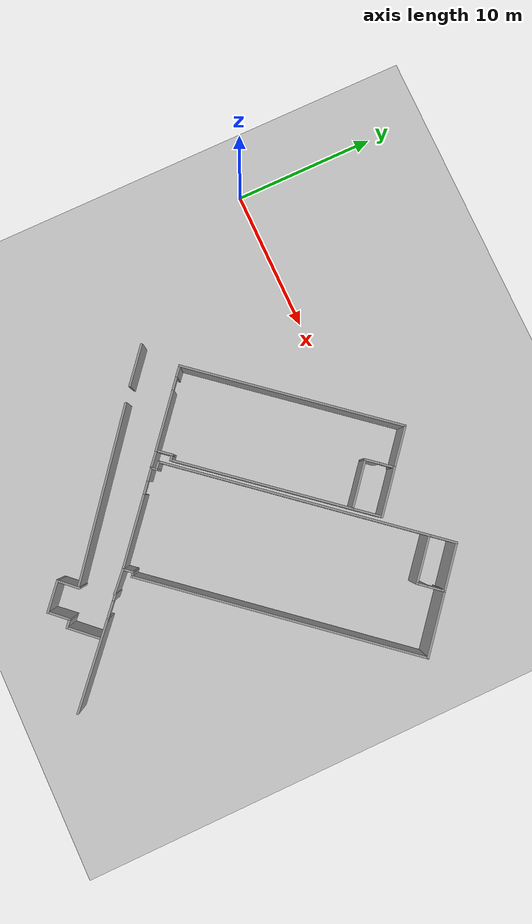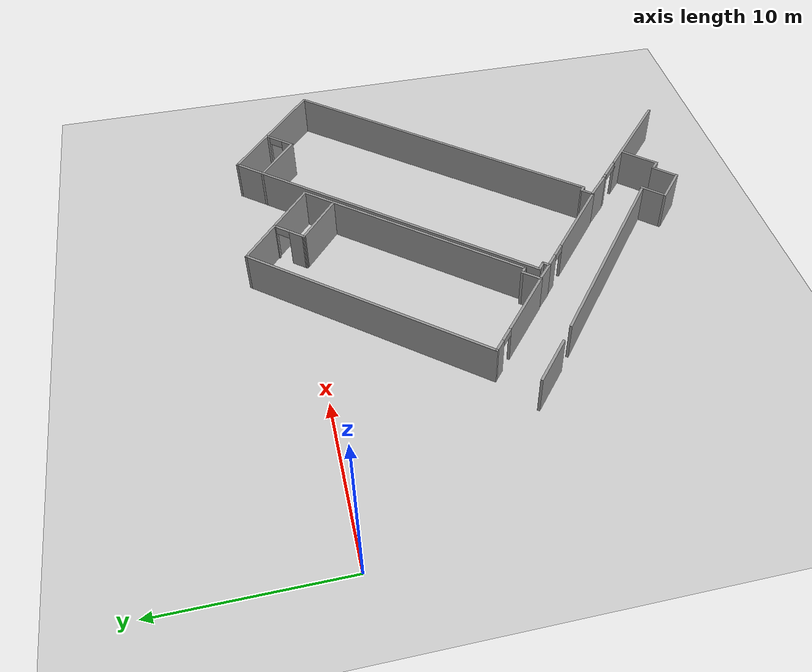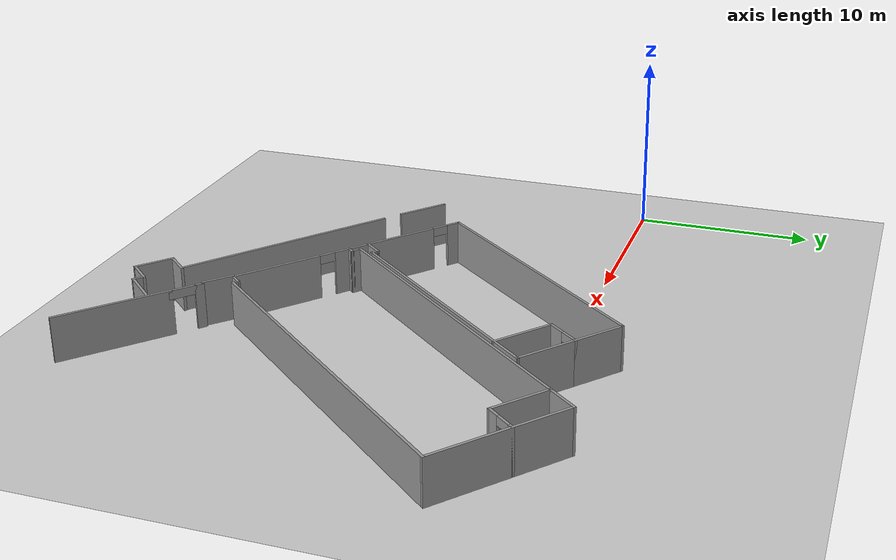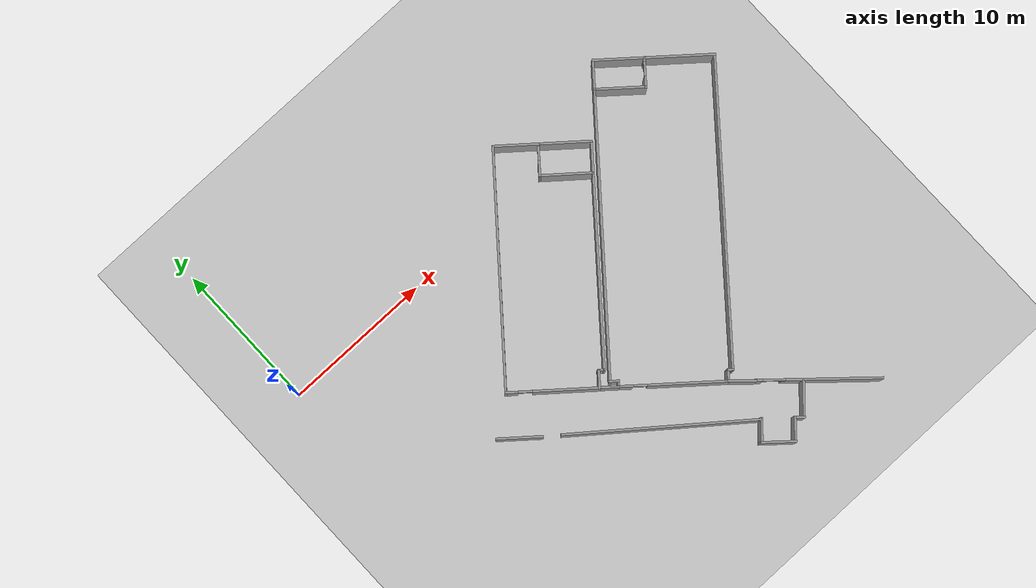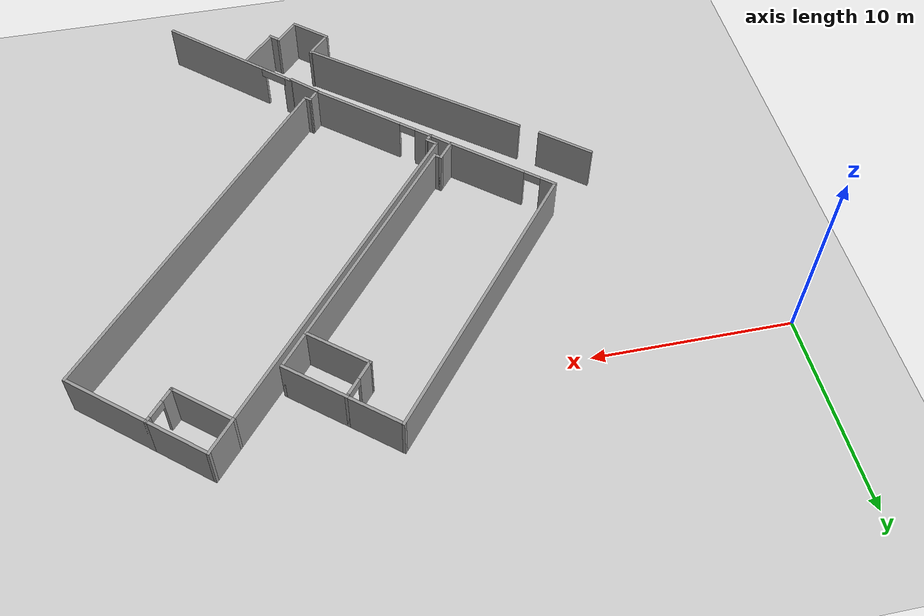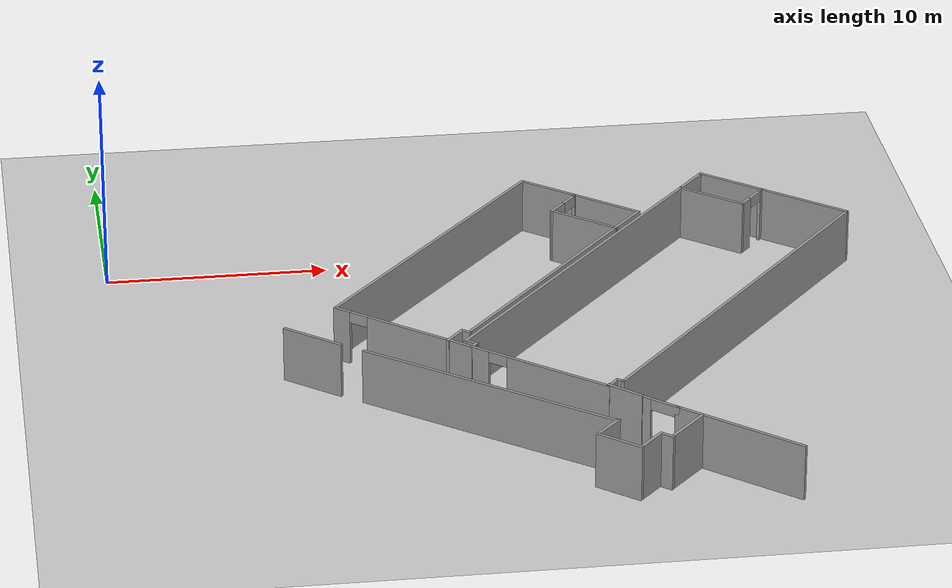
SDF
<sdf version="1.6">
 <world name="default">
  <model name="ground_plane">
   <static>1</static>
   <link name="link">
    <collision name="collision">
     <geometry><plane><normal>0 0 1</normal><size>100 100</size></plane></geometry>
     <surface>
      <contact><collide_bitmask>65535</collide_bitmask></contact>
      <friction><ode><mu>100</mu><mu2>50</mu2></ode></friction>
     </surface>
    </collision>
    <visual name="visual">
     <cast_shadows>0</cast_shadows>
     <geometry><plane><normal>0 0 1</normal><size>100 100</size></plane></geometry>
     <material>
      <script><uri>file://media/materials/scripts/gazebo.material</uri><name>Gazebo/Grey</name></script>
     </material>
    </visual>
   </link>
  </model>
  <model name="1802">
   <pose>24.1192 -7.53078 0 0 -0 2.44606</pose>
   <link name="Wall_100">
    <collision name="Wall_100_Collision">
     <geometry><box><size>3.3883 0.15 2.5</size></box></geometry>
     <pose>0 0 1.25 0 -0 0</pose>
    </collision>
    <visual name="Wall_100_Visual">
     <pose>0 0 1.25 0 -0 0</pose>
     <geometry><box><size>3.3883 0.15 2.5</size></box></geometry>
     <material>
      <script><uri>file://media/materials/scripts/gazebo.material</uri><name>Gazebo/Grey</name></script>
      <ambient>1 1 1 1</ambient>
     </material>
     <meta><layer>0</layer></meta>
    </visual>
    <pose>2.21705 -8.45439 0 0 -0 3.14159</pose>
   </link>
   <link name="Wall_101">
    <pose>0.598047 -9.40484 0 0 -0 -1.57085</pose>
    <visual name="Wall_101_Visual_0">
     <pose>-0.610406 0 1.25 0 -0 0</pose>
     <geometry><box><size>0.728286 0.15 2.5</size></box></geometry>
     <material>
      <script><uri>file://media/materials/scripts/gazebo.material</uri><name>Gazebo/Grey</name></script>
      <ambient>1 1 1 1</ambient>
     </material>
     <meta><layer>0</layer></meta>
    </visual>
    <collision name="Wall_101_Collision_0">
     <geometry><box><size>0.728286 0.15 2.5</size></box></geometry>
     <pose>-0.610406 0 1.25 0 -0 0</pose>
    </collision>
    <visual name="Wall_101_Visual_1">
     <pose>0.814143 0 1.25 0 -0 0</pose>
     <geometry><box><size>0.320812 0.15 2.5</size></box></geometry>
     <material>
      <script><uri>file://media/materials/scripts/gazebo.material</uri><name>Gazebo/Grey</name></script>
      <ambient>1 1 1 1</ambient>
     </material>
     <meta><layer>0</layer></meta>
    </visual>
    <collision name="Wall_101_Collision_1">
     <geometry><box><size>0.320812 0.15 2.5</size></box></geometry>
     <pose>0.814143 0 1.25 0 -0 0</pose>
    </collision>
    <visual name="Wall_101_Visual_2">
     <pose>0.203737 0 2.25 0 -0 0</pose>
     <geometry><box><size>0.9 0.15 0.5</size></box></geometry>
     <material>
      <script><uri>file://media/materials/scripts/gazebo.material</uri><name>Gazebo/Grey</name></script>
      <ambient>1 1 1 1</ambient>
     </material>
     <meta><layer>0</layer></meta>
    </visual>
    <collision name="Wall_101_Collision_2">
     <geometry><box><size>0.9 0.15 0.5</size></box></geometry>
     <pose>0.203737 0 2.25 0 -0 0</pose>
    </collision>
   </link>
   <link name="Wall_102">
    <collision name="Wall_102_Collision">
     <geometry><box><size>4.58439 0.15 2.5</size></box></geometry>
     <pose>0 0 1.25 0 -0 0</pose>
    </collision>
    <visual name="Wall_102_Visual">
     <pose>0 0 1.25 0 -0 0</pose>
     <geometry><box><size>4.58439 0.15 2.5</size></box></geometry>
     <material>
      <script><uri>file://media/materials/scripts/gazebo.material</uri><name>Gazebo/Grey</name></script>
      <ambient>1 1 1 1</ambient>
     </material>
     <meta><layer>0</layer></meta>
    </visual>
    <pose>-1.619 -10.3044 0 0 -0 3.14159</pose>
   </link>
   <link name="Wall_103">
    <collision name="Wall_103_Collision">
     <geometry><box><size>20.059 0.15 2.5</size></box></geometry>
     <pose>0 0 1.25 0 -0 0</pose>
    </collision>
    <visual name="Wall_103_Visual">
     <pose>0 0 1.25 0 -0 0</pose>
     <geometry><box><size>20.059 0.15 2.5</size></box></geometry>
     <material>
      <script><uri>file://media/materials/scripts/gazebo.material</uri><name>Gazebo/Grey</name></script>
      <ambient>1 1 1 1</ambient>
     </material>
     <meta><layer>0</layer></meta>
    </visual>
    <pose>-3.836 -0.349889 0 0 -0 1.5708</pose>
   </link>
   <link name="Wall_104">
    <collision name="Wall_104_Collision">
     <geometry><box><size>0.445 0.15 2.5</size></box></geometry>
     <pose>0 0 1.25 0 -0 0</pose>
    </collision>
    <visual name="Wall_104_Visual">
     <pose>0 0 1.25 0 -0 0</pose>
     <geometry><box><size>0.445 0.15 2.5</size></box></geometry>
     <material>
      <script><uri>file://media/materials/scripts/gazebo.material</uri><name>Gazebo/Grey</name></script>
      <ambient>1 1 1 1</ambient>
     </material>
     <meta><layer>0</layer></meta>
    </visual>
    <pose>-3.6885 9.60461 0 0 -0 0</pose>
   </link>
   <link name="Wall_106">
    <collision name="Wall_106_Collision">
     <geometry><box><size>0.849769 0.15 2.5</size></box></geometry>
     <pose>0 0 1.25 0 -0 0</pose>
    </collision>
    <visual name="Wall_106_Visual">
     <pose>0 0 1.25 0 -0 0</pose>
     <geometry><box><size>0.849769 0.15 2.5</size></box></geometry>
     <material>
      <script><uri>file://media/materials/scripts/gazebo.material</uri><name>Gazebo/Grey</name></script>
      <ambient>1 1 1 1</ambient>
     </material>
     <meta><layer>0</layer></meta>
    </visual>
    <pose>-3.54093 9.95449 0 0 -0 1.57059</pose>
   </link>
   <link name="Wall_114">
    <collision name="Wall_114_Collision">
     <geometry><box><size>2 0.15 2.5</size></box></geometry>
     <pose>0 0 1.25 0 -0 0</pose>
    </collision>
    <visual name="Wall_114_Visual">
     <pose>0 0 1.25 0 -0 0</pose>
     <geometry><box><size>2 0.15 2.5</size></box></geometry>
     <material>
      <script><uri>file://media/materials/scripts/gazebo.material</uri><name>Gazebo/Grey</name></script>
      <ambient>1 1 1 1</ambient>
     </material>
     <meta><layer>0</layer></meta>
    </visual>
    <pose>3.836 -9.37929 0 0 -0 -1.5708</pose>
   </link>
   <link name="Wall_116">
    <collision name="Wall_116_Collision">
     <geometry><box><size>3.3883 0.15 2.5</size></box></geometry>
     <pose>0 0 1.25 0 -0 0</pose>
    </collision>
    <visual name="Wall_116_Visual">
     <pose>0 0 1.25 0 -0 0</pose>
     <geometry><box><size>3.3883 0.15 2.5</size></box></geometry>
     <material>
      <script><uri>file://media/materials/scripts/gazebo.material</uri><name>Gazebo/Grey</name></script>
      <ambient>1 1 1 1</ambient>
     </material>
     <meta><layer>0</layer></meta>
    </visual>
    <pose>2.217 -10.3043 0 0 -0 -3.14153</pose>
   </link>
   <link name="Wall_93">
    <pose>-0.115858 10.3044 0 0 -0 0</pose>
    <visual name="Wall_93_Visual_0">
     <pose>-0.934826 0 1.25 0 -0 0</pose>
     <geometry><box><size>5.13035 0.15 2.5</size></box></geometry>
     <material>
      <script><uri>file://media/materials/scripts/gazebo.material</uri><name>Gazebo/Grey</name></script>
      <ambient>1 1 1 1</ambient>
     </material>
     <meta><layer>0</layer></meta>
    </visual>
    <collision name="Wall_93_Collision_0">
     <geometry><box><size>5.13035 0.15 2.5</size></box></geometry>
     <pose>-0.934826 0 1.25 0 -0 0</pose>
    </collision>
    <visual name="Wall_93_Visual_1">
     <pose>3.01517 0 1.25 0 -0 0</pose>
     <geometry><box><size>0.969653 0.15 2.5</size></box></geometry>
     <material>
      <script><uri>file://media/materials/scripts/gazebo.material</uri><name>Gazebo/Grey</name></script>
      <ambient>1 1 1 1</ambient>
     </material>
     <meta><layer>0</layer></meta>
    </visual>
    <collision name="Wall_93_Collision_1">
     <geometry><box><size>0.969653 0.15 2.5</size></box></geometry>
     <pose>3.01517 0 1.25 0 -0 0</pose>
    </collision>
    <visual name="Wall_93_Visual_2">
     <pose>2.08035 0 2.25 0 -0 0</pose>
     <geometry><box><size>0.9 0.15 0.5</size></box></geometry>
     <material>
      <script><uri>file://media/materials/scripts/gazebo.material</uri><name>Gazebo/Grey</name></script>
      <ambient>1 1 1 1</ambient>
     </material>
     <meta><layer>0</layer></meta>
    </visual>
    <collision name="Wall_93_Collision_2">
     <geometry><box><size>0.9 0.15 0.5</size></box></geometry>
     <pose>2.08035 0 2.25 0 -0 0</pose>
    </collision>
   </link>
   <link name="Wall_94">
    <collision name="Wall_94_Collision">
     <geometry><box><size>0.5 0.15 2.5</size></box></geometry>
     <pose>0 0 1.25 0 -0 0</pose>
    </collision>
    <visual name="Wall_94_Visual">
     <pose>0 0 1.25 0 -0 0</pose>
     <geometry><box><size>0.5 0.15 2.5</size></box></geometry>
     <material>
      <script><uri>file://media/materials/scripts/gazebo.material</uri><name>Gazebo/Grey</name></script>
      <ambient>1 1 1 1</ambient>
     </material>
     <meta><layer>0</layer></meta>
    </visual>
    <pose>3.30914 10.1294 0 0 -0 -1.5708</pose>
   </link>
   <link name="Wall_95">
    <collision name="Wall_95_Collision">
     <geometry><box><size>0.676857 0.15 2.5</size></box></geometry>
     <pose>0 0 1.25 0 -0 0</pose>
    </collision>
    <visual name="Wall_95_Visual">
     <pose>0 0 1.25 0 -0 0</pose>
     <geometry><box><size>0.676857 0.15 2.5</size></box></geometry>
     <material>
      <script><uri>file://media/materials/scripts/gazebo.material</uri><name>Gazebo/Grey</name></script>
      <ambient>1 1 1 1</ambient>
     </material>
     <meta><layer>0</layer></meta>
    </visual>
    <pose>3.57257 9.95449 0 0 -0 0.000439</pose>
   </link>
   <link name="Wall_99">
    <collision name="Wall_99_Collision">
     <geometry><box><size>18.5597 0.15 2.5</size></box></geometry>
     <pose>0 0 1.25 0 -0 0</pose>
    </collision>
    <visual name="Wall_99_Visual">
     <pose>0 0 1.25 0 -0 0</pose>
     <geometry><box><size>18.5597 0.15 2.5</size></box></geometry>
     <material>
      <script><uri>file://media/materials/scripts/gazebo.material</uri><name>Gazebo/Grey</name></script>
      <ambient>1 1 1 1</ambient>
     </material>
     <meta><layer>0</layer></meta>
    </visual>
    <pose>3.836 0.750111 0 0 -0 -1.5708</pose>
   </link>
   <static>1</static>
  </model>
  <model name="wall(1.8)">
   <link name="Wall_106">
    <inertial>
     <mass>1</mass>
     <inertia><ixx>1</ixx><ixy>0</ixy><ixz>0</ixz><iyy>1</iyy><iyz>0</iyz><izz>1</izz></inertia>
    </inertial>
    <visual name="Wall_106_Visual">
     <pose>0 0 1.25 0 -0 0</pose>
     <geometry><box><size>1.8 0.15 2.5</size></box></geometry>
     <material>
      <script><uri>file://media/materials/scripts/gazebo.material</uri><name>Gazebo/Grey</name></script>
      <ambient>1 1 1 1</ambient>
      <shader type="vertex"><normal_map>__default__</normal_map></shader>
      <diffuse>0.7 0.7 0.7 1</diffuse>
      <specular>0.01 0.01 0.01 1</specular>
      <emissive>0 0 0 1</emissive>
     </material>
     <meta><layer>0</layer></meta>
    </visual>
    <collision name="Wall_106_Collision">
     <pose>0 0 1.25 0 -0 0</pose>
     <geometry><box><size>6.75 0.15 2.5</size></box></geometry>
     <surface>
      <friction>
       <ode><mu>1</mu><mu2>1</mu2><fdir1>0 0 0</fdir1><slip1>0</slip1><slip2>0</slip2></ode>
       <torsional>
        <coefficient>1</coefficient>
        <patch_radius>0</patch_radius>
        <surface_radius>0</surface_radius>
        <use_patch_radius>1</use_patch_radius>
        <ode><slip>0</slip></ode>
       </torsional>
      </friction>
      <bounce><restitution_coefficient>0</restitution_coefficient><threshold>1e+06</threshold></bounce>
      <contact>
       <collide_without_contact>0</collide_without_contact>
       <collide_without_contact_bitmask>1</collide_without_contact_bitmask>
       <collide_bitmask>1</collide_bitmask>
       <ode>
        <soft_cfm>0</soft_cfm>
        <soft_erp>0.2</soft_erp>
        <kp>1e+13</kp>
        <kd>1</kd>
        <max_vel>0.01</max_vel>
        <min_depth>0</min_depth>
       </ode>
       <bullet>
        <split_impulse>1</split_impulse>
        <split_impulse_penetration_threshold>-0.01</split_impulse_penetration_threshold>
        <soft_cfm>0</soft_cfm>
        <soft_erp>0.2</soft_erp>
        <kp>1e+13</kp>
        <kd>1</kd>
       </bullet>
      </contact>
     </surface>
    </collision>
   </link>
   <static>1</static>
   <pose>20.8488 -18.268 0.050769 0 0 -0.749802</pose>
  </model>
  <model name="door_1801_1">
   <link name="Wall_121">
    <inertial>
     <mass>1</mass>
     <inertia><ixx>1</ixx><ixy>0</ixy><ixz>0</ixz><iyy>1</iyy><iyz>0</iyz><izz>1</izz></inertia>
    </inertial>
    <visual name="Wall_121_Visual_2">
     <pose>-2.7 0 2.25 0 -0 0</pose>
     <geometry><box><size>1.5 0.15 0.5</size></box></geometry>
     <material>
      <script><uri>file://media/materials/scripts/gazebo.material</uri><name>Gazebo/Grey</name></script>
      <ambient>1 1 1 1</ambient>
      <shader type="vertex"><normal_map>__default__</normal_map></shader>
      <diffuse>0.7 0.7 0.7 1</diffuse>
      <specular>0.01 0.01 0.01 1</specular>
      <emissive>0 0 0 1</emissive>
     </material>
     <meta><layer>0</layer></meta>
    </visual>
    <visual name="Wall_121_Visual_0">
     <pose>-3.61905 0 1.25 0 -0 0</pose>
     <geometry><box><size>0.511899 0.15 2.5</size></box></geometry>
     <material>
      <script><uri>file://media/materials/scripts/gazebo.material</uri><name>Gazebo/Grey</name></script>
      <ambient>1 1 1 1</ambient>
      <shader type="vertex"><normal_map>__default__</normal_map></shader>
      <diffuse>0.7 0.7 0.7 1</diffuse>
      <specular>0.01 0.01 0.01 1</specular>
      <emissive>0 0 0 1</emissive>
     </material>
     <meta><layer>0</layer></meta>
    </visual>
    <visual name="Wall_121_Visual_1">
     <pose>1 0 1.25 0 -0 0</pose>
     <geometry><box><size>6.3381 0.15 2.5</size></box></geometry>
     <material>
      <script><uri>file://media/materials/scripts/gazebo.material</uri><name>Gazebo/Grey</name></script>
      <ambient>1 1 1 1</ambient>
      <shader type="vertex"><normal_map>__default__</normal_map></shader>
      <diffuse>0.7 0.7 0.7 1</diffuse>
      <specular>0.01 0.01 0.01 1</specular>
      <emissive>0 0 0 1</emissive>
     </material>
     <meta><layer>0</layer></meta>
    </visual>
    <collision name="Wall_121_Collision_2">
     <pose>-2.9131 0 2.25 0 -0 0</pose>
     <geometry><box><size>0.9 0.15 0.5</size></box></geometry>
     <surface>
      <friction>
       <ode><mu>1</mu><mu2>1</mu2><fdir1>0 0 0</fdir1><slip1>0</slip1><slip2>0</slip2></ode>
       <torsional>
        <coefficient>1</coefficient>
        <patch_radius>0</patch_radius>
        <surface_radius>0</surface_radius>
        <use_patch_radius>1</use_patch_radius>
        <ode><slip>0</slip></ode>
       </torsional>
      </friction>
      <bounce><restitution_coefficient>0</restitution_coefficient><threshold>1e+06</threshold></bounce>
      <contact>
       <collide_without_contact>0</collide_without_contact>
       <collide_without_contact_bitmask>1</collide_without_contact_bitmask>
       <collide_bitmask>1</collide_bitmask>
       <ode>
        <soft_cfm>0</soft_cfm>
        <soft_erp>0.2</soft_erp>
        <kp>1e+13</kp>
        <kd>1</kd>
        <max_vel>0.01</max_vel>
        <min_depth>0</min_depth>
       </ode>
       <bullet>
        <split_impulse>1</split_impulse>
        <split_impulse_penetration_threshold>-0.01</split_impulse_penetration_threshold>
        <soft_cfm>0</soft_cfm>
        <soft_erp>0.2</soft_erp>
        <kp>1e+13</kp>
        <kd>1</kd>
       </bullet>
      </contact>
     </surface>
    </collision>
    <collision name="Wall_121_Collision_0">
     <pose>-3.61905 0 1.25 0 -0 0</pose>
     <geometry><box><size>0.511899 0.15 2.5</size></box></geometry>
     <surface>
      <friction>
       <ode><mu>1</mu><mu2>1</mu2><fdir1>0 0 0</fdir1><slip1>0</slip1><slip2>0</slip2></ode>
       <torsional>
        <coefficient>1</coefficient>
        <patch_radius>0</patch_radius>
        <surface_radius>0</surface_radius>
        <use_patch_radius>1</use_patch_radius>
        <ode><slip>0</slip></ode>
       </torsional>
      </friction>
      <bounce><restitution_coefficient>0</restitution_coefficient><threshold>1e+06</threshold></bounce>
      <contact>
       <collide_without_contact>0</collide_without_contact>
       <collide_without_contact_bitmask>1</collide_without_contact_bitmask>
       <collide_bitmask>1</collide_bitmask>
       <ode>
        <soft_cfm>0</soft_cfm>
        <soft_erp>0.2</soft_erp>
        <kp>1e+13</kp>
        <kd>1</kd>
        <max_vel>0.01</max_vel>
        <min_depth>0</min_depth>
       </ode>
       <bullet>
        <split_impulse>1</split_impulse>
        <split_impulse_penetration_threshold>-0.01</split_impulse_penetration_threshold>
        <soft_cfm>0</soft_cfm>
        <soft_erp>0.2</soft_erp>
        <kp>1e+13</kp>
        <kd>1</kd>
       </bullet>
      </contact>
     </surface>
    </collision>
    <collision name="Wall_121_Collision_1">
     <pose>0.705949 0 1.25 0 -0 0</pose>
     <geometry><box><size>6.3381 0.15 2.5</size></box></geometry>
     <surface>
      <friction>
       <ode><mu>1</mu><mu2>1</mu2><fdir1>0 0 0</fdir1><slip1>0</slip1><slip2>0</slip2></ode>
       <torsional>
        <coefficient>1</coefficient>
        <patch_radius>0</patch_radius>
        <surface_radius>0</surface_radius>
        <use_patch_radius>1</use_patch_radius>
        <ode><slip>0</slip></ode>
       </torsional>
      </friction>
      <bounce><restitution_coefficient>0</restitution_coefficient><threshold>1e+06</threshold></bounce>
      <contact>
       <collide_without_contact>0</collide_without_contact>
       <collide_without_contact_bitmask>1</collide_without_contact_bitmask>
       <collide_bitmask>1</collide_bitmask>
       <ode>
        <soft_cfm>0</soft_cfm>
        <soft_erp>0.2</soft_erp>
        <kp>1e+13</kp>
        <kd>1</kd>
        <max_vel>0.01</max_vel>
        <min_depth>0</min_depth>
       </ode>
       <bullet>
        <split_impulse>1</split_impulse>
        <split_impulse_penetration_threshold>-0.01</split_impulse_penetration_threshold>
        <soft_cfm>0</soft_cfm>
        <soft_erp>0.2</soft_erp>
        <kp>1e+13</kp>
        <kd>1</kd>
       </bullet>
      </contact>
     </surface>
    </collision>
   </link>
   <static>1</static>
   <pose>24.3454 -21.3477 0 0 0 -0.726417</pose>
  </model>
  <model name="1803">
   <pose>16.8834 -4.84922 0 0 -0 2.44874</pose>
   <link name="Wall_14">
    <pose>0.175076 7.7485 0 0 -0 0</pose>
    <visual name="Wall_14_Visual_0">
     <pose>-0.877839 0 1.25 0 -0 0</pose>
     <geometry><box><size>4.24432 0.15 2.5</size></box></geometry>
     <material>
      <script><uri>file://media/materials/scripts/gazebo.material</uri><name>Gazebo/Grey</name></script>
      <ambient>1 1 1 1</ambient>
     </material>
     <meta><layer>0</layer></meta>
    </visual>
    <collision name="Wall_14_Collision_0">
     <geometry><box><size>4.24432 0.15 2.5</size></box></geometry>
     <pose>-0.877839 0 1.25 0 -0 0</pose>
    </collision>
    <visual name="Wall_14_Visual_1">
     <pose>2.57216 0 1.25 0 -0 0</pose>
     <geometry><box><size>0.855678 0.15 2.5</size></box></geometry>
     <material>
      <script><uri>file://media/materials/scripts/gazebo.material</uri><name>Gazebo/Grey</name></script>
      <ambient>1 1 1 1</ambient>
     </material>
     <meta><layer>0</layer></meta>
    </visual>
    <collision name="Wall_14_Collision_1">
     <geometry><box><size>0.855678 0.15 2.5</size></box></geometry>
     <pose>2.57216 0 1.25 0 -0 0</pose>
    </collision>
    <visual name="Wall_14_Visual_2">
     <pose>1.69432 0 2.25 0 -0 0</pose>
     <geometry><box><size>0.9 0.15 0.5</size></box></geometry>
     <material>
      <script><uri>file://media/materials/scripts/gazebo.material</uri><name>Gazebo/Grey</name></script>
      <ambient>1 1 1 1</ambient>
     </material>
     <meta><layer>0</layer></meta>
    </visual>
    <collision name="Wall_14_Collision_2">
     <geometry><box><size>0.9 0.15 0.5</size></box></geometry>
     <pose>1.69432 0 2.25 0 -0 0</pose>
    </collision>
   </link>
   <link name="Wall_15">
    <collision name="Wall_15_Collision">
     <geometry><box><size>15.647 0.15 2.5</size></box></geometry>
     <pose>0 0 1.25 0 -0 0</pose>
    </collision>
    <visual name="Wall_15_Visual">
     <pose>0 0 1.25 0 -0 0</pose>
     <geometry><box><size>15.647 0.15 2.5</size></box></geometry>
     <material>
      <script><uri>file://media/materials/scripts/gazebo.material</uri><name>Gazebo/Grey</name></script>
      <ambient>1 1 1 1</ambient>
     </material>
     <meta><layer>0</layer></meta>
    </visual>
    <pose>3.10008 -0 0 0 -0 -1.5708</pose>
   </link>
   <link name="Wall_17">
    <collision name="Wall_17_Collision">
     <geometry><box><size>2.15 0.15 2.5</size></box></geometry>
     <pose>0 0 1.25 0 -0 0</pose>
    </collision>
    <visual name="Wall_17_Visual">
     <pose>0 0 1.25 0 -0 0</pose>
     <geometry><box><size>2.15 0.15 2.5</size></box></geometry>
     <material>
      <script><uri>file://media/materials/scripts/gazebo.material</uri><name>Gazebo/Grey</name></script>
      <ambient>1 1 1 1</ambient>
     </material>
     <meta><layer>0</layer></meta>
    </visual>
    <pose>-3.09992 -6.7485 0 0 -0 -1.5708</pose>
   </link>
   <link name="Wall_18">
    <collision name="Wall_18_Collision">
     <geometry><box><size>3.5 0.15 2.5</size></box></geometry>
     <pose>0 0 1.25 0 -0 0</pose>
    </collision>
    <visual name="Wall_18_Visual">
     <pose>0 0 1.25 0 -0 0</pose>
     <geometry><box><size>3.5 0.15 2.5</size></box></geometry>
     <material>
      <script><uri>file://media/materials/scripts/gazebo.material</uri><name>Gazebo/Grey</name></script>
      <ambient>1 1 1 1</ambient>
     </material>
     <meta><layer>0</layer></meta>
    </visual>
    <pose>-1.42492 -7.7485 0 0 -0 0</pose>
   </link>
   <link name="Wall_2">
    <collision name="Wall_2_Collision">
     <geometry><box><size>1.25 0.15 2.5</size></box></geometry>
     <pose>0 0 1.25 0 -0 0</pose>
    </collision>
    <visual name="Wall_2_Visual">
     <pose>0 0 1.25 0 -0 0</pose>
     <geometry><box><size>1.25 0.15 2.5</size></box></geometry>
     <material>
      <script><uri>file://media/materials/scripts/gazebo.material</uri><name>Gazebo/Grey</name></script>
      <ambient>1 1 1 1</ambient>
     </material>
     <meta><layer>0</layer></meta>
    </visual>
    <pose>-2.74992 7.1985 0 0 -0 -1.5708</pose>
   </link>
   <link name="Wall_3">
    <collision name="Wall_3_Collision">
     <geometry><box><size>0.5 0.15 2.5</size></box></geometry>
     <pose>0 0 1.25 0 -0 0</pose>
    </collision>
    <visual name="Wall_3_Visual">
     <pose>0 0 1.25 0 -0 0</pose>
     <geometry><box><size>0.5 0.15 2.5</size></box></geometry>
     <material>
      <script><uri>file://media/materials/scripts/gazebo.material</uri><name>Gazebo/Grey</name></script>
      <ambient>1 1 1 1</ambient>
     </material>
     <meta><layer>0</layer></meta>
    </visual>
    <pose>-2.92492 6.6485 0 0 -0 3.14159</pose>
   </link>
   <link name="Wall_4">
    <collision name="Wall_4_Collision">
     <geometry><box><size>12.547 0.15 2.5</size></box></geometry>
     <pose>0 0 1.25 0 -0 0</pose>
    </collision>
    <visual name="Wall_4_Visual">
     <pose>0 0 1.25 0 -0 0</pose>
     <geometry><box><size>12.547 0.15 2.5</size></box></geometry>
     <material>
      <script><uri>file://media/materials/scripts/gazebo.material</uri><name>Gazebo/Grey</name></script>
      <ambient>1 1 1 1</ambient>
     </material>
     <meta><layer>0</layer></meta>
    </visual>
    <pose>-3.09992 0.45 0 0 -0 -1.5708</pose>
   </link>
   <link name="Wall_5">
    <collision name="Wall_5_Collision">
     <geometry><box><size>3.5 0.15 2.5</size></box></geometry>
     <pose>0 0 1.25 0 -0 0</pose>
    </collision>
    <visual name="Wall_5_Visual">
     <pose>0 0 1.25 0 -0 0</pose>
     <geometry><box><size>3.5 0.15 2.5</size></box></geometry>
     <material>
      <script><uri>file://media/materials/scripts/gazebo.material</uri><name>Gazebo/Grey</name></script>
      <ambient>1 1 1 1</ambient>
     </material>
     <meta><layer>0</layer></meta>
    </visual>
    <pose>-1.42492 -5.745 0 0 -0 0.00209</pose>
   </link>
   <link name="Wall_6">
    <pose>0.250076 -6.745 0 0 -0 -1.5708</pose>
    <visual name="Wall_6_Visual_0">
     <pose>-0.556999 0 1.25 0 -0 0</pose>
     <geometry><box><size>1.043 0.15 2.5</size></box></geometry>
     <material>
      <script><uri>file://media/materials/scripts/gazebo.material</uri><name>Gazebo/Grey</name></script>
      <ambient>1 1 1 1</ambient>
     </material>
     <meta><layer>0</layer></meta>
    </visual>
    <collision name="Wall_6_Collision_0">
     <geometry><box><size>1.043 0.15 2.5</size></box></geometry>
     <pose>-0.556999 0 1.25 0 -0 0</pose>
    </collision>
    <visual name="Wall_6_Visual_1">
     <pose>0.971501 0 1.25 0 -0 0</pose>
     <geometry><box><size>0.213998 0.15 2.5</size></box></geometry>
     <material>
      <script><uri>file://media/materials/scripts/gazebo.material</uri><name>Gazebo/Grey</name></script>
      <ambient>1 1 1 1</ambient>
     </material>
     <meta><layer>0</layer></meta>
    </visual>
    <collision name="Wall_6_Collision_1">
     <geometry><box><size>0.213998 0.15 2.5</size></box></geometry>
     <pose>0.971501 0 1.25 0 -0 0</pose>
    </collision>
    <visual name="Wall_6_Visual_2">
     <pose>0.414502 0 2.25 0 -0 0</pose>
     <geometry><box><size>0.9 0.15 0.5</size></box></geometry>
     <material>
      <script><uri>file://media/materials/scripts/gazebo.material</uri><name>Gazebo/Grey</name></script>
      <ambient>1 1 1 1</ambient>
     </material>
     <meta><layer>0</layer></meta>
    </visual>
    <collision name="Wall_6_Collision_2">
     <geometry><box><size>0.9 0.15 0.5</size></box></geometry>
     <pose>0.414502 0 2.25 0 -0 0</pose>
    </collision>
   </link>
   <link name="Wall_7">
    <collision name="Wall_7_Collision">
     <geometry><box><size>3 0.15 2.5</size></box></geometry>
     <pose>0 0 1.25 0 -0 0</pose>
    </collision>
    <visual name="Wall_7_Visual">
     <pose>0 0 1.25 0 -0 0</pose>
     <geometry><box><size>3 0.15 2.5</size></box></geometry>
     <material>
      <script><uri>file://media/materials/scripts/gazebo.material</uri><name>Gazebo/Grey</name></script>
      <ambient>1 1 1 1</ambient>
     </material>
     <meta><layer>0</layer></meta>
    </visual>
    <pose>1.67508 -7.7485 0 0 -0 0</pose>
   </link>
   <static>1</static>
  </model>
  <model name="wall(1.2)_0">
   <link name="Wall_106">
    <inertial>
     <mass>1</mass>
     <inertia><ixx>1</ixx><ixy>0</ixy><ixz>0</ixz><iyy>1</iyy><iyz>0</iyz><izz>1</izz></inertia>
    </inertial>
    <visual name="Wall_106_Visual">
     <pose>0 0 1.25 0 -0 0</pose>
     <geometry><box><size>1.2 0.15 2.5</size></box></geometry>
     <material>
      <script><uri>file://media/materials/scripts/gazebo.material</uri><name>Gazebo/Grey</name></script>
      <ambient>1 1 1 1</ambient>
      <shader type="vertex"><normal_map>__default__</normal_map></shader>
      <diffuse>0.7 0.7 0.7 1</diffuse>
      <specular>0.01 0.01 0.01 1</specular>
      <emissive>0 0 0 1</emissive>
     </material>
     <meta><layer>0</layer></meta>
    </visual>
    <collision name="Wall_106_Collision">
     <pose>0 0 1.25 0 -0 0</pose>
     <geometry><box><size>6.75 0.15 2.5</size></box></geometry>
     <surface>
      <friction>
       <ode><mu>1</mu><mu2>1</mu2><fdir1>0 0 0</fdir1><slip1>0</slip1><slip2>0</slip2></ode>
       <torsional>
        <coefficient>1</coefficient>
        <patch_radius>0</patch_radius>
        <surface_radius>0</surface_radius>
        <use_patch_radius>1</use_patch_radius>
        <ode><slip>0</slip></ode>
       </torsional>
      </friction>
      <bounce><restitution_coefficient>0</restitution_coefficient><threshold>1e+06</threshold></bounce>
      <contact>
       <collide_without_contact>0</collide_without_contact>
       <collide_without_contact_bitmask>1</collide_without_contact_bitmask>
       <collide_bitmask>1</collide_bitmask>
       <ode>
        <soft_cfm>0</soft_cfm>
        <soft_erp>0.2</soft_erp>
        <kp>1e+13</kp>
        <kd>1</kd>
        <max_vel>0.01</max_vel>
        <min_depth>0</min_depth>
       </ode>
       <bullet>
        <split_impulse>1</split_impulse>
        <split_impulse_penetration_threshold>-0.01</split_impulse_penetration_threshold>
        <soft_cfm>0</soft_cfm>
        <soft_erp>0.2</soft_erp>
        <kp>1e+13</kp>
        <kd>1</kd>
       </bullet>
      </contact>
     </surface>
    </collision>
   </link>
   <static>1</static>
   <pose>14.5519 -12.9747 0 0 0 -0.724002</pose>
  </model>
  <model name="wall(2.25)">
   <pose>22.9447 -21.6446 0 0 -0 0.83086</pose>
   <link name="Wall_0">
    <collision name="Wall_0_Collision">
     <geometry><box><size>2.25 0.15 2.5</size></box></geometry>
     <pose>0 0 1.25 0 -0 0</pose>
    </collision>
    <visual name="Wall_0_Visual">
     <pose>0 0 1.25 0 -0 0</pose>
     <geometry><box><size>2.25 0.15 2.5</size></box></geometry>
     <material>
      <script><uri>file://media/materials/scripts/gazebo.material</uri><name>Gazebo/Grey</name></script>
      <ambient>1 1 1 1</ambient>
     </material>
     <meta><layer>0</layer></meta>
    </visual>
   </link>
   <static>1</static>
  </model>
  <model name="wall(0.6)">
   <link name="Wall_0">
    <inertial>
     <mass>1</mass>
     <inertia><ixx>1</ixx><ixy>0</ixy><ixz>0</ixz><iyy>1</iyy><iyz>0</iyz><izz>1</izz></inertia>
    </inertial>
    <visual name="Wall_0_Visual">
     <pose>0 0 1.25 0 -0 0</pose>
     <geometry><box><size>0.6 0.15 2.5</size></box></geometry>
     <material>
      <script><uri>file://media/materials/scripts/gazebo.material</uri><name>Gazebo/Grey</name></script>
      <ambient>1 1 1 1</ambient>
      <shader type="vertex"><normal_map>__default__</normal_map></shader>
      <diffuse>0.7 0.7 0.7 1</diffuse>
      <specular>0.01 0.01 0.01 1</specular>
      <emissive>0 0 0 1</emissive>
     </material>
     <meta><layer>0</layer></meta>
    </visual>
    <collision name="Wall_0_Collision">
     <pose>0 0 1.25 0 -0 0</pose>
     <geometry><box><size>2.25 0.15 2.5</size></box></geometry>
     <surface>
      <friction>
       <ode><mu>1</mu><mu2>1</mu2><fdir1>0 0 0</fdir1><slip1>0</slip1><slip2>0</slip2></ode>
       <torsional>
        <coefficient>1</coefficient>
        <patch_radius>0</patch_radius>
        <surface_radius>0</surface_radius>
        <use_patch_radius>1</use_patch_radius>
        <ode><slip>0</slip></ode>
       </torsional>
      </friction>
      <bounce><restitution_coefficient>0</restitution_coefficient><threshold>1e+06</threshold></bounce>
      <contact>
       <collide_without_contact>0</collide_without_contact>
       <collide_without_contact_bitmask>1</collide_without_contact_bitmask>
       <collide_bitmask>1</collide_bitmask>
       <ode>
        <soft_cfm>0</soft_cfm>
        <soft_erp>0.2</soft_erp>
        <kp>1e+13</kp>
        <kd>1</kd>
        <max_vel>0.01</max_vel>
        <min_depth>0</min_depth>
       </ode>
       <bullet>
        <split_impulse>1</split_impulse>
        <split_impulse_penetration_threshold>-0.01</split_impulse_penetration_threshold>
        <soft_cfm>0</soft_cfm>
        <soft_erp>0.2</soft_erp>
        <kp>1e+13</kp>
        <kd>1</kd>
       </bullet>
      </contact>
     </surface>
    </collision>
   </link>
   <static>1</static>
   <pose>21.979 -22.3826 0 0 0 -0.730177</pose>
  </model>
  <model name="wall(1.5)">
   <link name="Wall_0">
    <inertial>
     <mass>1</mass>
     <inertia><ixx>1</ixx><ixy>0</ixy><ixz>0</ixz><iyy>1</iyy><iyz>0</iyz><izz>1</izz></inertia>
    </inertial>
    <visual name="Wall_0_Visual">
     <pose>0 0 1.25 0 -0 0</pose>
     <geometry><box><size>1.5 0.15 2.5</size></box></geometry>
     <material>
      <script><uri>file://media/materials/scripts/gazebo.material</uri><name>Gazebo/Grey</name></script>
      <ambient>1 1 1 1</ambient>
      <shader type="vertex"><normal_map>__default__</normal_map></shader>
      <diffuse>0.7 0.7 0.7 1</diffuse>
      <specular>0.01 0.01 0.01 1</specular>
      <emissive>0 0 0 1</emissive>
     </material>
     <meta><layer>0</layer></meta>
    </visual>
    <collision name="Wall_0_Collision">
     <pose>0 0 1.25 0 -0 0</pose>
     <geometry><box><size>2.25 0.15 2.5</size></box></geometry>
     <surface>
      <friction>
       <ode><mu>1</mu><mu2>1</mu2><fdir1>0 0 0</fdir1><slip1>0</slip1><slip2>0</slip2></ode>
       <torsional>
        <coefficient>1</coefficient>
        <patch_radius>0</patch_radius>
        <surface_radius>0</surface_radius>
        <use_patch_radius>1</use_patch_radius>
        <ode><slip>0</slip></ode>
       </torsional>
      </friction>
      <bounce><restitution_coefficient>0</restitution_coefficient><threshold>1e+06</threshold></bounce>
      <contact>
       <collide_without_contact>0</collide_without_contact>
       <collide_without_contact_bitmask>1</collide_without_contact_bitmask>
       <collide_bitmask>1</collide_bitmask>
       <ode>
        <soft_cfm>0</soft_cfm>
        <soft_erp>0.2</soft_erp>
        <kp>1e+13</kp>
        <kd>1</kd>
        <max_vel>0.01</max_vel>
        <min_depth>0</min_depth>
       </ode>
       <bullet>
        <split_impulse>1</split_impulse>
        <split_impulse_penetration_threshold>-0.01</split_impulse_penetration_threshold>
        <soft_cfm>0</soft_cfm>
        <soft_erp>0.2</soft_erp>
        <kp>1e+13</kp>
        <kd>1</kd>
       </bullet>
      </contact>
     </surface>
    </collision>
   </link>
   <static>1</static>
   <pose>21.2761 -22.6552 0 0 -0 0.83086</pose>
  </model>
  <model name="wall(2.25)_clone">
   <pose>19.932 -22.5892 0 0 0 -0.711746</pose>
   <link name="Wall_0">
    <collision name="Wall_0_Collision">
     <geometry><box><size>2.25 0.15 2.5</size></box></geometry>
     <pose>0 0 1.25 0 -0 0</pose>
    </collision>
    <visual name="Wall_0_Visual">
     <pose>0 0 1.25 0 -0 0</pose>
     <geometry><box><size>2.25 0.15 2.5</size></box></geometry>
     <material>
      <script><uri>file://media/materials/scripts/gazebo.material</uri><name>Gazebo/Grey</name></script>
      <ambient>1 1 1 1</ambient>
     </material>
     <meta><layer>0</layer></meta>
    </visual>
   </link>
   <static>1</static>
  </model>
  <model name="wall(1.5)_clone">
   <link name="Wall_0">
    <inertial>
     <mass>1</mass>
     <inertia><ixx>1</ixx><ixy>0</ixy><ixz>0</ixz><iyy>1</iyy><iyz>0</iyz><izz>1</izz></inertia>
    </inertial>
    <visual name="Wall_0_Visual">
     <pose>0 0 1.25 0 -0 0</pose>
     <geometry><box><size>1.5 0.15 2.5</size></box></geometry>
     <material>
      <script><uri>file://media/materials/scripts/gazebo.material</uri><name>Gazebo/Grey</name></script>
      <ambient>1 1 1 1</ambient>
      <shader type="vertex"><normal_map>__default__</normal_map></shader>
      <diffuse>0.7 0.7 0.7 1</diffuse>
      <specular>0.01 0.01 0.01 1</specular>
      <emissive>0 0 0 1</emissive>
     </material>
     <meta><layer>0</layer></meta>
    </visual>
    <collision name="Wall_0_Collision">
     <pose>0 0 1.25 0 -0 0</pose>
     <geometry><box><size>2.25 0.15 2.5</size></box></geometry>
     <surface>
      <friction>
       <ode><mu>1</mu><mu2>1</mu2><fdir1>0 0 0</fdir1><slip1>0</slip1><slip2>0</slip2></ode>
       <torsional>
        <coefficient>1</coefficient>
        <patch_radius>0</patch_radius>
        <surface_radius>0</surface_radius>
        <use_patch_radius>1</use_patch_radius>
        <ode><slip>0</slip></ode>
       </torsional>
      </friction>
      <bounce><restitution_coefficient>0</restitution_coefficient><threshold>1e+06</threshold></bounce>
      <contact>
       <collide_without_contact>0</collide_without_contact>
       <collide_without_contact_bitmask>1</collide_without_contact_bitmask>
       <collide_bitmask>1</collide_bitmask>
       <ode>
        <soft_cfm>0</soft_cfm>
        <soft_erp>0.2</soft_erp>
        <kp>1e+13</kp>
        <kd>1</kd>
        <max_vel>0.01</max_vel>
        <min_depth>0</min_depth>
       </ode>
       <bullet>
        <split_impulse>1</split_impulse>
        <split_impulse_penetration_threshold>-0.01</split_impulse_penetration_threshold>
        <soft_cfm>0</soft_cfm>
        <soft_erp>0.2</soft_erp>
        <kp>1e+13</kp>
        <kd>1</kd>
       </bullet>
      </contact>
     </surface>
    </collision>
   </link>
   <static>1</static>
   <pose>19.6827 -21.2982 0 0 -0 0.83086</pose>
  </model>
  <model name="wall(12.5)">
   <link name="Wall_106">
    <pose>-2.9353 0.017524 0 0 0 -0.005631</pose>
    <inertial>
     <mass>1</mass>
     <inertia><ixx>1</ixx><ixy>0</ixy><ixz>0</ixz><iyy>1</iyy><iyz>0</iyz><izz>1</izz></inertia>
    </inertial>
    <visual name="Wall_106_Visual">
     <pose>0 0 1.25 0 -0 0</pose>
     <geometry><box><size>12.5 0.15 2.5</size></box></geometry>
     <material>
      <script><uri>file://media/materials/scripts/gazebo.material</uri><name>Gazebo/Grey</name></script>
      <ambient>1 1 1 1</ambient>
      <shader type="vertex"><normal_map>__default__</normal_map></shader>
      <diffuse>0.7 0.7 0.7 1</diffuse>
      <specular>0.01 0.01 0.01 1</specular>
      <emissive>0 0 0 1</emissive>
     </material>
     <meta><layer>0</layer></meta>
    </visual>
    <collision name="Wall_106_Collision">
     <pose>0 0 1.25 0 -0 0</pose>
     <geometry><box><size>6.75 0.15 2.5</size></box></geometry>
     <surface>
      <friction>
       <ode><mu>1</mu><mu2>1</mu2><fdir1>0 0 0</fdir1><slip1>0</slip1><slip2>0</slip2></ode>
       <torsional>
        <coefficient>1</coefficient>
        <patch_radius>0</patch_radius>
        <surface_radius>0</surface_radius>
        <use_patch_radius>1</use_patch_radius>
        <ode><slip>0</slip></ode>
       </torsional>
      </friction>
      <bounce><restitution_coefficient>0</restitution_coefficient><threshold>1e+06</threshold></bounce>
      <contact>
       <collide_without_contact>0</collide_without_contact>
       <collide_without_contact_bitmask>1</collide_without_contact_bitmask>
       <collide_bitmask>1</collide_bitmask>
       <ode>
        <soft_cfm>0</soft_cfm>
        <soft_erp>0.2</soft_erp>
        <kp>1e+13</kp>
        <kd>1</kd>
        <max_vel>0.01</max_vel>
        <min_depth>0</min_depth>
       </ode>
       <bullet>
        <split_impulse>1</split_impulse>
        <split_impulse_penetration_threshold>-0.01</split_impulse_penetration_threshold>
        <soft_cfm>0</soft_cfm>
        <soft_erp>0.2</soft_erp>
        <kp>1e+13</kp>
        <kd>1</kd>
       </bullet>
      </contact>
     </surface>
    </collision>
   </link>
   <static>1</static>
   <pose>17.4933 -18.7719 0 0 0 -0.663551</pose>
  </model>
  <model name="wall(3)">
   <link name="Wall_106">
    <pose>-2.9353 0.017524 0 0 0 -0.005631</pose>
    <inertial>
     <mass>1</mass>
     <inertia><ixx>1</ixx><ixy>0</ixy><ixz>0</ixz><iyy>1</iyy><iyz>0</iyz><izz>1</izz></inertia>
    </inertial>
    <visual name="Wall_106_Visual">
     <pose>0 0 1.25 0 -0 0</pose>
     <geometry><box><size>3 0.15 2.5</size></box></geometry>
     <material>
      <script><uri>file://media/materials/scripts/gazebo.material</uri><name>Gazebo/Grey</name></script>
      <ambient>1 1 1 1</ambient>
      <shader type="vertex"><normal_map>__default__</normal_map></shader>
      <diffuse>0.7 0.7 0.7 1</diffuse>
      <specular>0.01 0.01 0.01 1</specular>
      <emissive>0 0 0 1</emissive>
     </material>
     <meta><layer>0</layer></meta>
    </visual>
    <collision name="Wall_106_Collision">
     <pose>0 0 1.25 0 -0 0</pose>
     <geometry><box><size>6.75 0.15 2.5</size></box></geometry>
     <surface>
      <friction>
       <ode><mu>1</mu><mu2>1</mu2><fdir1>0 0 0</fdir1><slip1>0</slip1><slip2>0</slip2></ode>
       <torsional>
        <coefficient>1</coefficient>
        <patch_radius>0</patch_radius>
        <surface_radius>0</surface_radius>
        <use_patch_radius>1</use_patch_radius>
        <ode><slip>0</slip></ode>
       </torsional>
      </friction>
      <bounce><restitution_coefficient>0</restitution_coefficient><threshold>1e+06</threshold></bounce>
      <contact>
       <collide_without_contact>0</collide_without_contact>
       <collide_without_contact_bitmask>1</collide_without_contact_bitmask>
       <collide_bitmask>1</collide_bitmask>
       <ode>
        <soft_cfm>0</soft_cfm>
        <soft_erp>0.2</soft_erp>
        <kp>1e+13</kp>
        <kd>1</kd>
        <max_vel>0.01</max_vel>
        <min_depth>0</min_depth>
       </ode>
       <bullet>
        <split_impulse>1</split_impulse>
        <split_impulse_penetration_threshold>-0.01</split_impulse_penetration_threshold>
        <soft_cfm>0</soft_cfm>
        <soft_erp>0.2</soft_erp>
        <kp>1e+13</kp>
        <kd>1</kd>
       </bullet>
      </contact>
     </surface>
    </collision>
   </link>
   <static>1</static>
   <pose>10.5405 -13.3457 0 0 0 -0.687587</pose>
  </model>
 </world>
</sdf>
